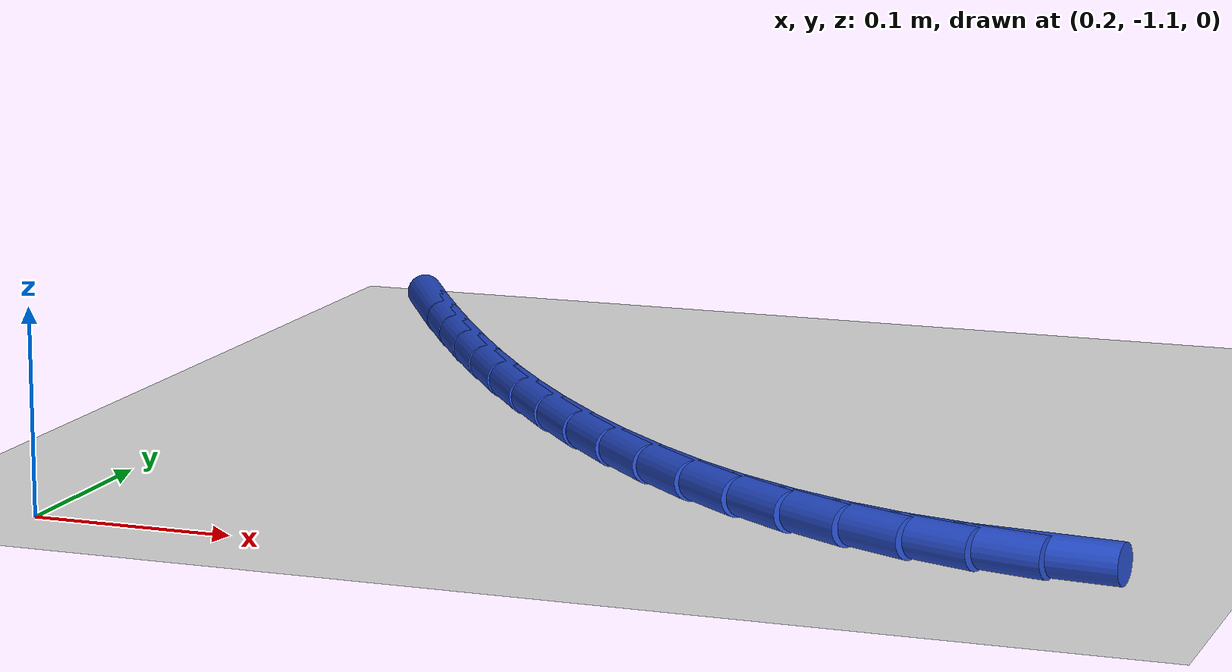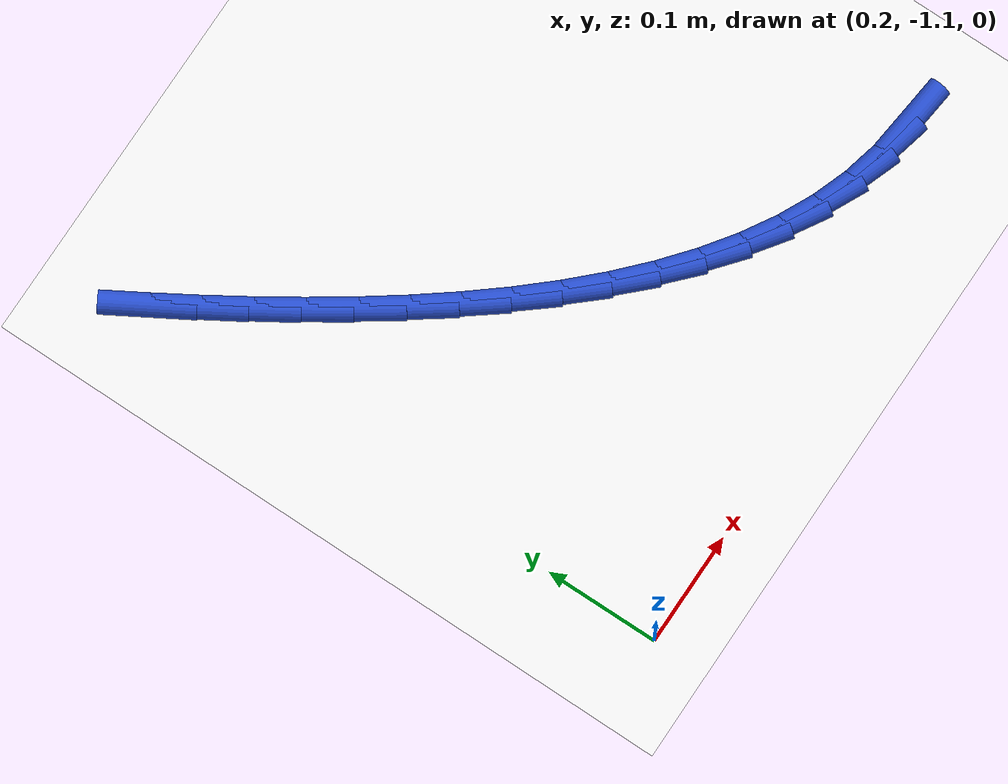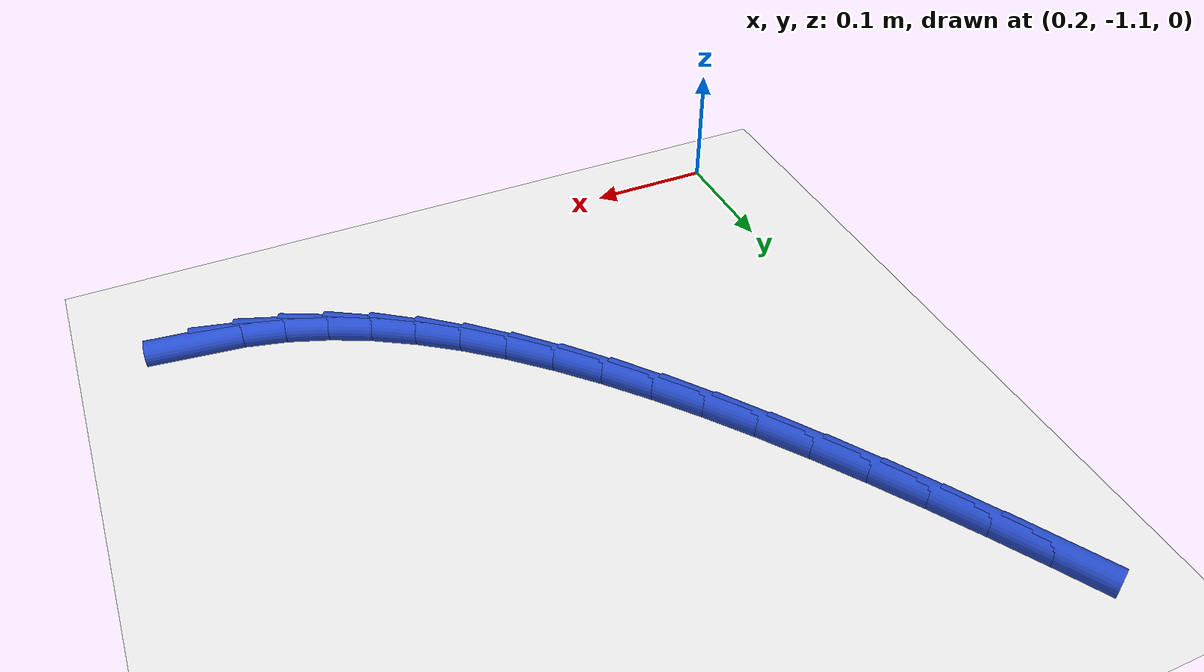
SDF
<sdf version="1.6">
 <world name="default">
  <model name="ground_plane">
   <static>1</static>
   <link name="link">
    <collision name="collision">
     <geometry><plane><normal>0 0 1</normal><size>100 100</size></plane></geometry>
     <surface><friction><ode><mu>100</mu><mu2>50</mu2></ode></friction></surface>
    </collision>
    <visual name="visual">
     <cast_shadows>0</cast_shadows>
     <geometry><plane><normal>0 0 1</normal><size>100 100</size></plane></geometry>
     <material>
      <script><uri>file://media/materials/scripts/gazebo.material</uri><name>Gazebo/WhiteGlow</name></script>
     </material>
    </visual>
   </link>
  </model>
  <model name="line">
   <link name="link_185">
    <pose>0.6633969472925959 -1.0386537407123277 0.01 0 1.57 -0.1128473358514732</pose>
    <collision name="collision">
     <geometry><cylinder><radius>0.01</radius><length>0.08</length></cylinder></geometry>
    </collision>
    <visual name="visual">
     <material>
      <script><name>Gazebo/Blue</name><uri>file://media/materials/scripts/gazebo.material</uri></script>
     </material>
     <geometry><cylinder><radius>0.01</radius><length>0.08</length></cylinder></geometry>
    </visual>
   </link>
   <link name="link_186">
    <pose>0.6308275330912183 -1.0349626878413776 0.01 0 1.57 -0.23675992295732443</pose>
    <collision name="collision">
     <geometry><cylinder><radius>0.01</radius><length>0.08</length></cylinder></geometry>
    </collision>
    <visual name="visual">
     <material>
      <script><name>Gazebo/Blue</name><uri>file://media/materials/scripts/gazebo.material</uri></script>
     </material>
     <geometry><cylinder><radius>0.01</radius><length>0.08</length></cylinder></geometry>
    </visual>
   </link>
   <link name="link_187">
    <pose>0.5988607332075372 -1.0272495689952084 0.01 0 1.57 -0.35055938254349</pose>
    <collision name="collision">
     <geometry><cylinder><radius>0.01</radius><length>0.08</length></cylinder></geometry>
    </collision>
    <visual name="visual">
     <material>
      <script><name>Gazebo/Blue</name><uri>file://media/materials/scripts/gazebo.material</uri></script>
     </material>
     <geometry><cylinder><radius>0.01</radius><length>0.08</length></cylinder></geometry>
    </visual>
   </link>
   <link name="link_188">
    <pose>0.5675097768922062 -1.015785698605966 0.01 0 1.57 -0.45271336111071747</pose>
    <collision name="collision">
     <geometry><cylinder><radius>0.01</radius><length>0.08</length></cylinder></geometry>
    </collision>
    <visual name="visual">
     <material>
      <script><name>Gazebo/Blue</name><uri>file://media/materials/scripts/gazebo.material</uri></script>
     </material>
     <geometry><cylinder><radius>0.01</radius><length>0.08</length></cylinder></geometry>
    </visual>
   </link>
   <link name="link_189">
    <pose>0.5367878933958798 -1.0008423911057944 0.01 0 1.57 -0.542950132179983</pose>
    <collision name="collision">
     <geometry><cylinder><radius>0.01</radius><length>0.08</length></cylinder></geometry>
    </collision>
    <visual name="visual">
     <material>
      <script><name>Gazebo/Blue</name><uri>file://media/materials/scripts/gazebo.material</uri></script>
     </material>
     <geometry><cylinder><radius>0.01</radius><length>0.08</length></cylinder></geometry>
    </visual>
   </link>
   <link name="link_190">
    <pose>0.5067083119692115 -0.9826909609268379 0.01 0 1.57 -0.621846797419616</pose>
    <collision name="collision">
     <geometry><cylinder><radius>0.01</radius><length>0.08</length></cylinder></geometry>
    </collision>
    <visual name="visual">
     <material>
      <script><name>Gazebo/Blue</name><uri>file://media/materials/scripts/gazebo.material</uri></script>
     </material>
     <geometry><cylinder><radius>0.01</radius><length>0.08</length></cylinder></geometry>
    </visual>
   </link>
   <link name="link_191">
    <pose>0.4772842618628573 -0.9616027225012427 0.01 0 1.57 -0.6904332821215179</pose>
    <collision name="collision">
     <geometry><cylinder><radius>0.01</radius><length>0.08</length></cylinder></geometry>
    </collision>
    <visual name="visual">
     <material>
      <script><name>Gazebo/Blue</name><uri>file://media/materials/scripts/gazebo.material</uri></script>
     </material>
     <geometry><cylinder><radius>0.01</radius><length>0.08</length></cylinder></geometry>
    </visual>
   </link>
   <link name="link_192">
    <pose>0.44852897232747047 -0.9378489902611526 0.01 0 1.57 -0.7499032088875971</pose>
    <collision name="collision">
     <geometry><cylinder><radius>0.01</radius><length>0.08</length></cylinder></geometry>
    </collision>
    <visual name="visual">
     <material>
      <script><name>Gazebo/Blue</name><uri>file://media/materials/scripts/gazebo.material</uri></script>
     </material>
     <geometry><cylinder><radius>0.01</radius><length>0.08</length></cylinder></geometry>
    </visual>
   </link>
   <link name="link_193">
    <pose>0.42045567261370553 -0.9117010786387127 0.01 0 1.57 -0.8014383736451117</pose>
    <collision name="collision">
     <geometry><cylinder><radius>0.01</radius><length>0.08</length></cylinder></geometry>
    </collision>
    <visual name="visual">
     <material>
      <script><name>Gazebo/Blue</name><uri>file://media/materials/scripts/gazebo.material</uri></script>
     </material>
     <geometry><cylinder><radius>0.01</radius><length>0.08</length></cylinder></geometry>
    </visual>
   </link>
   <link name="link_194">
    <pose>0.39307759197221676 -0.8834303020660677 0.01 0 1.57 -0.8461189131633212</pose>
    <collision name="collision">
     <geometry><cylinder><radius>0.01</radius><length>0.08</length></cylinder></geometry>
    </collision>
    <visual name="visual">
     <material>
      <script><name>Gazebo/Blue</name><uri>file://media/materials/scripts/gazebo.material</uri></script>
     </material>
     <geometry><cylinder><radius>0.01</radius><length>0.08</length></cylinder></geometry>
    </visual>
   </link>
   <link name="link_195">
    <pose>0.3664079596536581 -0.8533079749753619 0.01 0 1.57 -0.8848874567671102</pose>
    <collision name="collision">
     <geometry><cylinder><radius>0.01</radius><length>0.08</length></cylinder></geometry>
    </collision>
    <visual name="visual">
     <material>
      <script><name>Gazebo/Blue</name><uri>file://media/materials/scripts/gazebo.material</uri></script>
     </material>
     <geometry><cylinder><radius>0.01</radius><length>0.08</length></cylinder></geometry>
    </visual>
   </link>
   <link name="link_196">
    <pose>0.3404600049086848 -0.8216054117987409 0.01 0 1.57 -0.9185430690673813</pose>
    <collision name="collision">
     <geometry><cylinder><radius>0.01</radius><length>0.08</length></cylinder></geometry>
    </collision>
    <visual name="visual">
     <material>
      <script><name>Gazebo/Blue</name><uri>file://media/materials/scripts/gazebo.material</uri></script>
     </material>
     <geometry><cylinder><radius>0.01</radius><length>0.08</length></cylinder></geometry>
    </visual>
   </link>
   <link name="link_197">
    <pose>0.3152469569879507 -0.7885939269683492 0.01 0 1.57 -0.947749477420864</pose>
    <collision name="collision">
     <geometry><cylinder><radius>0.01</radius><length>0.08</length></cylinder></geometry>
    </collision>
    <visual name="visual">
     <material>
      <script><name>Gazebo/Blue</name><uri>file://media/materials/scripts/gazebo.material</uri></script>
     </material>
     <geometry><cylinder><radius>0.01</radius><length>0.08</length></cylinder></geometry>
    </visual>
   </link>
   <link name="link_198">
    <pose>0.2907820451421104 -0.7545448349163318 0.01 0 1.57 -0.9730486367563432</pose>
    <collision name="collision">
     <geometry><cylinder><radius>0.01</radius><length>0.08</length></cylinder></geometry>
    </collision>
    <visual name="visual">
     <material>
      <script><name>Gazebo/Blue</name><uri>file://media/materials/scripts/gazebo.material</uri></script>
     </material>
     <geometry><cylinder><radius>0.01</radius><length>0.08</length></cylinder></geometry>
    </visual>
   </link>
   <link name="link_199">
    <pose>0.26707849862181726 -0.7197294500748322 0.01 0 1.57 -0.9948748452212267</pose>
    <collision name="collision">
     <geometry><cylinder><radius>0.01</radius><length>0.08</length></cylinder></geometry>
    </collision>
    <visual name="visual">
     <material>
      <script><name>Gazebo/Blue</name><uri>file://media/materials/scripts/gazebo.material</uri></script>
     </material>
     <geometry><cylinder><radius>0.01</radius><length>0.08</length></cylinder></geometry>
    </visual>
   </link>
   <link name="link_200">
    <pose>0.24414954667772712 -0.6844190868759974 0.01 0 1.57 -1.0135669878521814</pose>
    <collision name="collision">
     <geometry><cylinder><radius>0.01</radius><length>0.08</length></cylinder></geometry>
    </collision>
    <visual name="visual">
     <material>
      <script><name>Gazebo/Blue</name><uri>file://media/materials/scripts/gazebo.material</uri></script>
     </material>
     <geometry><cylinder><radius>0.01</radius><length>0.08</length></cylinder></geometry>
    </visual>
   </link>
   <link name="link_201">
    <pose>0.2220084185604935 -0.6488850597519706 0.01 0 1.57 -1.0293776831790356</pose>
    <collision name="collision">
     <geometry><cylinder><radius>0.01</radius><length>0.08</length></cylinder></geometry>
    </collision>
    <visual name="visual">
     <material>
      <script><name>Gazebo/Blue</name><uri>file://media/materials/scripts/gazebo.material</uri></script>
     </material>
     <geometry><cylinder><radius>0.01</radius><length>0.08</length></cylinder></geometry>
    </visual>
   </link>
   <link name="link_202">
    <pose>0.2006683435207709 -0.6133986831348973 0.01 0 1.57 -1.0424785809539767</pose>
    <collision name="collision">
     <geometry><cylinder><radius>0.01</radius><length>0.08</length></cylinder></geometry>
    </collision>
    <visual name="visual">
     <material>
      <script><name>Gazebo/Blue</name><uri>file://media/materials/scripts/gazebo.material</uri></script>
     </material>
     <geometry><cylinder><radius>0.01</radius><length>0.08</length></cylinder></geometry>
    </visual>
   </link>
  </model>
 </world>
</sdf>
